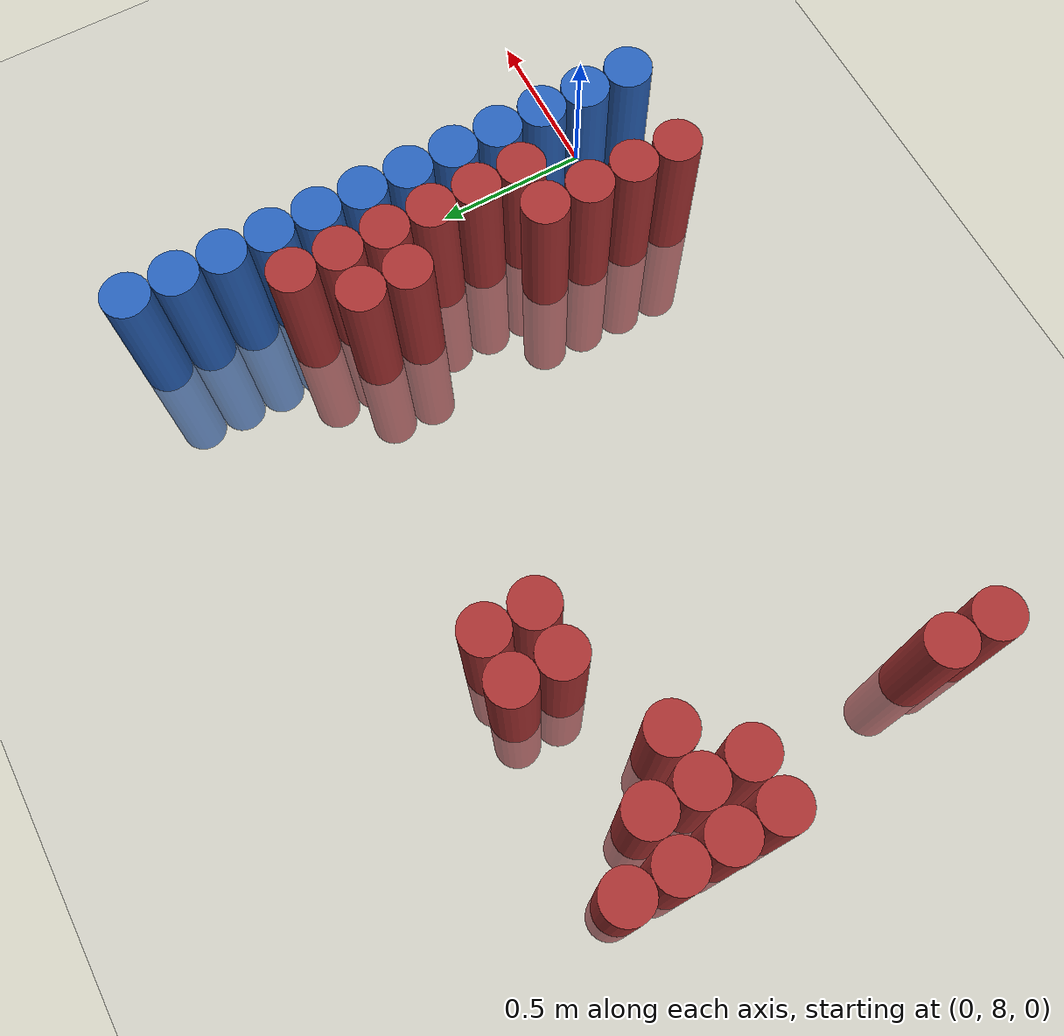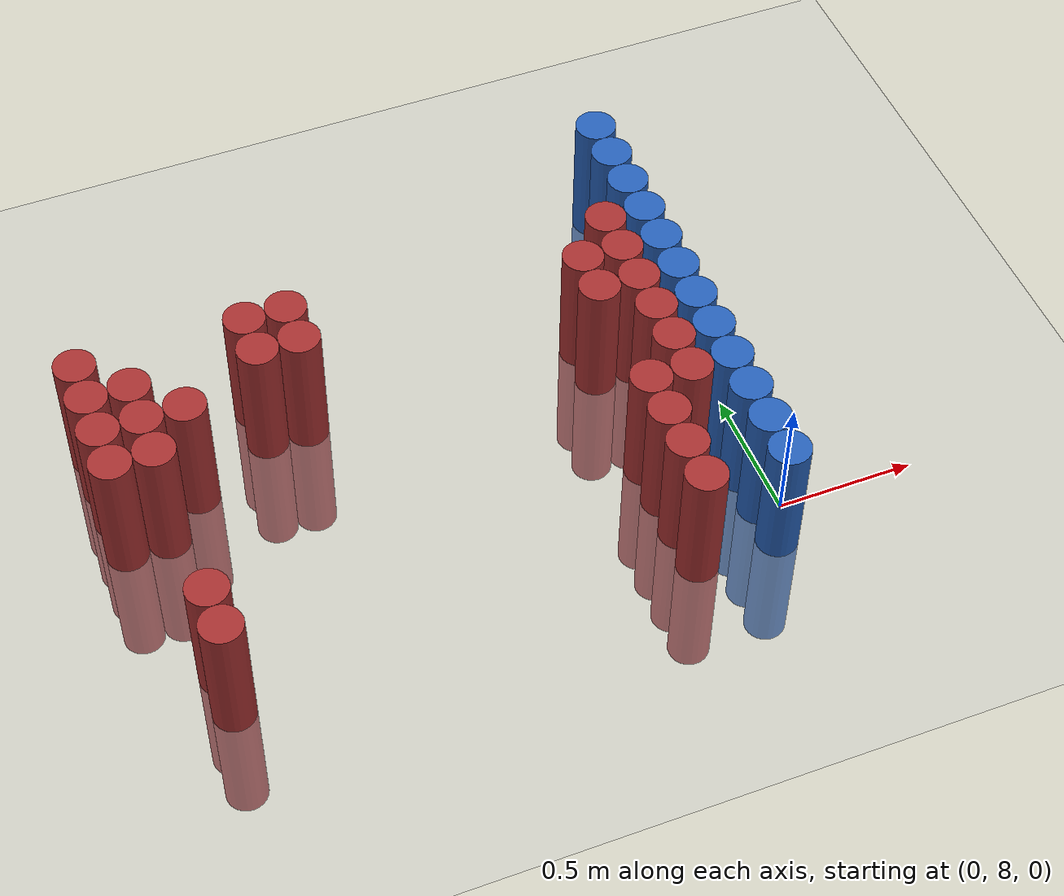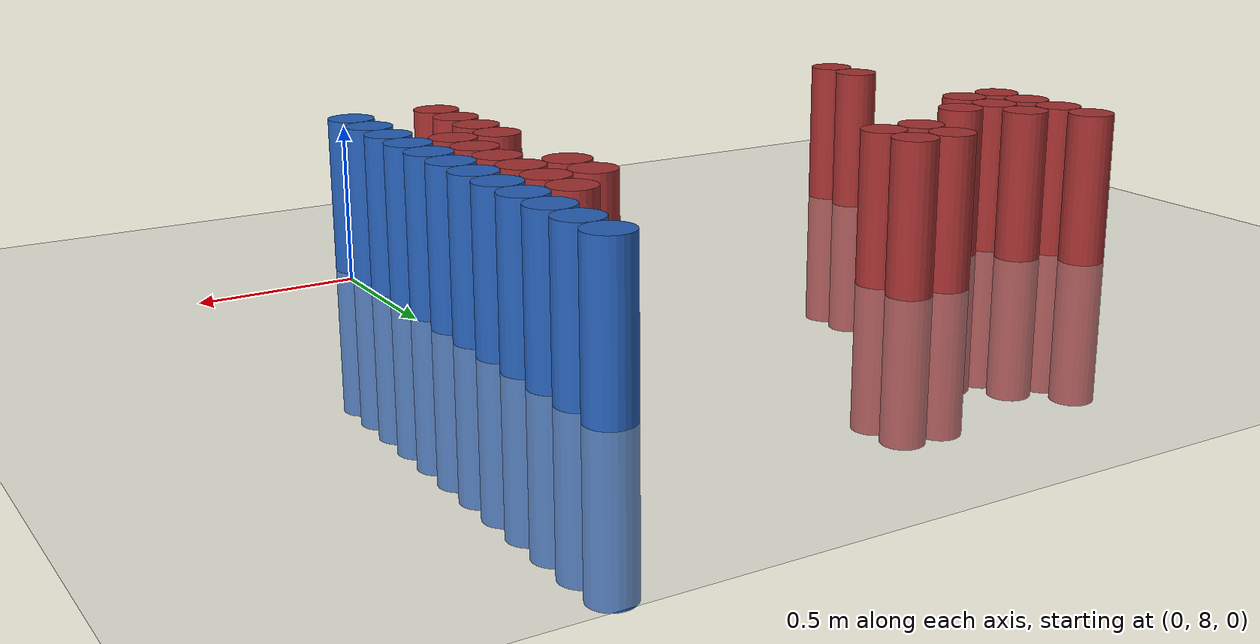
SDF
<sdf version="1.6">
 <world name="default">
  <model name="ground_plane">
   <static>1</static>
   <link name="link">
    <collision name="collision">
     <geometry><plane><normal>0 0 1</normal><size>100 100</size></plane></geometry>
     <surface><friction><ode><mu>100</mu><mu2>50</mu2></ode></friction></surface>
    </collision>
    <visual name="visual">
     <cast_shadows>0</cast_shadows>
     <geometry><plane><normal>0 0 1</normal><size>100 100</size></plane></geometry>
     <material>
      <script><uri>file://media/materials/scripts/gazebo.material</uri><name>Gazebo/Grey</name></script>
     </material>
    </visual>
   </link>
  </model>
  <model name="unit_cylinder_239">
   <static>1</static>
   <pose>-2.175000 8.625000 0.000000 0.000000 0.000000 0.000000</pose>
   <link name="link">
    <inertial>
     <mass>1</mass>
     <inertia><ixx>0.145833</ixx><ixy>0</ixy><ixz>0</ixz><iyy>0.145833</iyy><iyz>0</iyz><izz>0.125</izz></inertia>
    </inertial>
    <collision name="collision">
     <geometry><cylinder><radius>0.075000</radius><length>1</length></cylinder></geometry>
    </collision>
    <visual name="visual">
     <geometry><cylinder><radius>0.075000</radius><length>1</length></cylinder></geometry>
     <material>
      <ambient>0.648000 0.192000 0.192000 1</ambient>
      <diffuse>0.648000 0.192000 0.192000 1</diffuse>
     </material>
     <material>
      <script><name>Gazebo/Grey</name><uri>file://media/materials/scripts/gazebo.material</uri></script>
     </material>
    </visual>
    <sensor name="sensor_contact" type="contact"><contact><collision>collision</collision></contact></sensor>
   </link>
   <plugin filename="gz-sim-touchplugin-system" name="gz::sim::systems::TouchPlugin">
    <target>robot</target>
    <namespace>robot</namespace>
    <time>0.001</time>
    <enabled>true</enabled>
   </plugin>
  </model>
  <model name="unit_cylinder_240">
   <static>1</static>
   <pose>-2.175000 8.775000 0.000000 0.000000 0.000000 0.000000</pose>
   <link name="link">
    <inertial>
     <mass>1</mass>
     <inertia><ixx>0.145833</ixx><ixy>0</ixy><ixz>0</ixz><iyy>0.145833</iyy><iyz>0</iyz><izz>0.125</izz></inertia>
    </inertial>
    <collision name="collision">
     <geometry><cylinder><radius>0.075000</radius><length>1</length></cylinder></geometry>
    </collision>
    <visual name="visual">
     <geometry><cylinder><radius>0.075000</radius><length>1</length></cylinder></geometry>
     <material>
      <ambient>0.648000 0.192000 0.192000 1</ambient>
      <diffuse>0.648000 0.192000 0.192000 1</diffuse>
     </material>
     <material>
      <script><name>Gazebo/Grey</name><uri>file://media/materials/scripts/gazebo.material</uri></script>
     </material>
    </visual>
    <sensor name="sensor_contact" type="contact"><contact><collision>collision</collision></contact></sensor>
   </link>
   <plugin filename="gz-sim-touchplugin-system" name="gz::sim::systems::TouchPlugin">
    <target>robot</target>
    <namespace>robot</namespace>
    <time>0.001</time>
    <enabled>true</enabled>
   </plugin>
  </model>
  <model name="unit_cylinder_241">
   <static>1</static>
   <pose>-2.175000 8.925000 0.000000 0.000000 0.000000 0.000000</pose>
   <link name="link">
    <inertial>
     <mass>1</mass>
     <inertia><ixx>0.145833</ixx><ixy>0</ixy><ixz>0</ixz><iyy>0.145833</iyy><iyz>0</iyz><izz>0.125</izz></inertia>
    </inertial>
    <collision name="collision">
     <geometry><cylinder><radius>0.075000</radius><length>1</length></cylinder></geometry>
    </collision>
    <visual name="visual">
     <geometry><cylinder><radius>0.075000</radius><length>1</length></cylinder></geometry>
     <material>
      <ambient>0.648000 0.192000 0.192000 1</ambient>
      <diffuse>0.648000 0.192000 0.192000 1</diffuse>
     </material>
     <material>
      <script><name>Gazebo/Grey</name><uri>file://media/materials/scripts/gazebo.material</uri></script>
     </material>
    </visual>
    <sensor name="sensor_contact" type="contact"><contact><collision>collision</collision></contact></sensor>
   </link>
   <plugin filename="gz-sim-touchplugin-system" name="gz::sim::systems::TouchPlugin">
    <target>robot</target>
    <namespace>robot</namespace>
    <time>0.001</time>
    <enabled>true</enabled>
   </plugin>
  </model>
  <model name="unit_cylinder_242">
   <static>1</static>
   <pose>-2.175000 9.075000 0.000000 0.000000 0.000000 0.000000</pose>
   <link name="link">
    <inertial>
     <mass>1</mass>
     <inertia><ixx>0.145833</ixx><ixy>0</ixy><ixz>0</ixz><iyy>0.145833</iyy><iyz>0</iyz><izz>0.125</izz></inertia>
    </inertial>
    <collision name="collision">
     <geometry><cylinder><radius>0.075000</radius><length>1</length></cylinder></geometry>
    </collision>
    <visual name="visual">
     <geometry><cylinder><radius>0.075000</radius><length>1</length></cylinder></geometry>
     <material>
      <ambient>0.648000 0.192000 0.192000 1</ambient>
      <diffuse>0.648000 0.192000 0.192000 1</diffuse>
     </material>
     <material>
      <script><name>Gazebo/Grey</name><uri>file://media/materials/scripts/gazebo.material</uri></script>
     </material>
    </visual>
    <sensor name="sensor_contact" type="contact"><contact><collision>collision</collision></contact></sensor>
   </link>
   <plugin filename="gz-sim-touchplugin-system" name="gz::sim::systems::TouchPlugin">
    <target>robot</target>
    <namespace>robot</namespace>
    <time>0.001</time>
    <enabled>true</enabled>
   </plugin>
  </model>
  <model name="unit_cylinder_243">
   <static>1</static>
   <pose>-2.025000 7.875000 0.000000 0.000000 0.000000 0.000000</pose>
   <link name="link">
    <inertial>
     <mass>1</mass>
     <inertia><ixx>0.145833</ixx><ixy>0</ixy><ixz>0</ixz><iyy>0.145833</iyy><iyz>0</iyz><izz>0.125</izz></inertia>
    </inertial>
    <collision name="collision">
     <geometry><cylinder><radius>0.075000</radius><length>1</length></cylinder></geometry>
    </collision>
    <visual name="visual">
     <geometry><cylinder><radius>0.075000</radius><length>1</length></cylinder></geometry>
     <material>
      <ambient>0.648000 0.192000 0.192000 1</ambient>
      <diffuse>0.648000 0.192000 0.192000 1</diffuse>
     </material>
     <material>
      <script><name>Gazebo/Grey</name><uri>file://media/materials/scripts/gazebo.material</uri></script>
     </material>
    </visual>
    <sensor name="sensor_contact" type="contact"><contact><collision>collision</collision></contact></sensor>
   </link>
   <plugin filename="gz-sim-touchplugin-system" name="gz::sim::systems::TouchPlugin">
    <target>robot</target>
    <namespace>robot</namespace>
    <time>0.001</time>
    <enabled>true</enabled>
   </plugin>
  </model>
  <model name="unit_cylinder_244">
   <static>1</static>
   <pose>-2.025000 8.025000 0.000000 0.000000 0.000000 0.000000</pose>
   <link name="link">
    <inertial>
     <mass>1</mass>
     <inertia><ixx>0.145833</ixx><ixy>0</ixy><ixz>0</ixz><iyy>0.145833</iyy><iyz>0</iyz><izz>0.125</izz></inertia>
    </inertial>
    <collision name="collision">
     <geometry><cylinder><radius>0.075000</radius><length>1</length></cylinder></geometry>
    </collision>
    <visual name="visual">
     <geometry><cylinder><radius>0.075000</radius><length>1</length></cylinder></geometry>
     <material>
      <ambient>0.648000 0.192000 0.192000 1</ambient>
      <diffuse>0.648000 0.192000 0.192000 1</diffuse>
     </material>
     <material>
      <script><name>Gazebo/Grey</name><uri>file://media/materials/scripts/gazebo.material</uri></script>
     </material>
    </visual>
    <sensor name="sensor_contact" type="contact"><contact><collision>collision</collision></contact></sensor>
   </link>
   <plugin filename="gz-sim-touchplugin-system" name="gz::sim::systems::TouchPlugin">
    <target>robot</target>
    <namespace>robot</namespace>
    <time>0.001</time>
    <enabled>true</enabled>
   </plugin>
  </model>
  <model name="unit_cylinder_245">
   <static>1</static>
   <pose>-2.025000 8.625000 0.000000 0.000000 0.000000 0.000000</pose>
   <link name="link">
    <inertial>
     <mass>1</mass>
     <inertia><ixx>0.145833</ixx><ixy>0</ixy><ixz>0</ixz><iyy>0.145833</iyy><iyz>0</iyz><izz>0.125</izz></inertia>
    </inertial>
    <collision name="collision">
     <geometry><cylinder><radius>0.075000</radius><length>1</length></cylinder></geometry>
    </collision>
    <visual name="visual">
     <geometry><cylinder><radius>0.075000</radius><length>1</length></cylinder></geometry>
     <material>
      <ambient>0.648000 0.192000 0.192000 1</ambient>
      <diffuse>0.648000 0.192000 0.192000 1</diffuse>
     </material>
     <material>
      <script><name>Gazebo/Grey</name><uri>file://media/materials/scripts/gazebo.material</uri></script>
     </material>
    </visual>
    <sensor name="sensor_contact" type="contact"><contact><collision>collision</collision></contact></sensor>
   </link>
   <plugin filename="gz-sim-touchplugin-system" name="gz::sim::systems::TouchPlugin">
    <target>robot</target>
    <namespace>robot</namespace>
    <time>0.001</time>
    <enabled>true</enabled>
   </plugin>
  </model>
  <model name="unit_cylinder_246">
   <static>1</static>
   <pose>-2.025000 8.775000 0.000000 0.000000 0.000000 0.000000</pose>
   <link name="link">
    <inertial>
     <mass>1</mass>
     <inertia><ixx>0.145833</ixx><ixy>0</ixy><ixz>0</ixz><iyy>0.145833</iyy><iyz>0</iyz><izz>0.125</izz></inertia>
    </inertial>
    <collision name="collision">
     <geometry><cylinder><radius>0.075000</radius><length>1</length></cylinder></geometry>
    </collision>
    <visual name="visual">
     <geometry><cylinder><radius>0.075000</radius><length>1</length></cylinder></geometry>
     <material>
      <ambient>0.648000 0.192000 0.192000 1</ambient>
      <diffuse>0.648000 0.192000 0.192000 1</diffuse>
     </material>
     <material>
      <script><name>Gazebo/Grey</name><uri>file://media/materials/scripts/gazebo.material</uri></script>
     </material>
    </visual>
    <sensor name="sensor_contact" type="contact"><contact><collision>collision</collision></contact></sensor>
   </link>
   <plugin filename="gz-sim-touchplugin-system" name="gz::sim::systems::TouchPlugin">
    <target>robot</target>
    <namespace>robot</namespace>
    <time>0.001</time>
    <enabled>true</enabled>
   </plugin>
  </model>
  <model name="unit_cylinder_247">
   <static>1</static>
   <pose>-2.025000 8.925000 0.000000 0.000000 0.000000 0.000000</pose>
   <link name="link">
    <inertial>
     <mass>1</mass>
     <inertia><ixx>0.145833</ixx><ixy>0</ixy><ixz>0</ixz><iyy>0.145833</iyy><iyz>0</iyz><izz>0.125</izz></inertia>
    </inertial>
    <collision name="collision">
     <geometry><cylinder><radius>0.075000</radius><length>1</length></cylinder></geometry>
    </collision>
    <visual name="visual">
     <geometry><cylinder><radius>0.075000</radius><length>1</length></cylinder></geometry>
     <material>
      <ambient>0.648000 0.192000 0.192000 1</ambient>
      <diffuse>0.648000 0.192000 0.192000 1</diffuse>
     </material>
     <material>
      <script><name>Gazebo/Grey</name><uri>file://media/materials/scripts/gazebo.material</uri></script>
     </material>
    </visual>
    <sensor name="sensor_contact" type="contact"><contact><collision>collision</collision></contact></sensor>
   </link>
   <plugin filename="gz-sim-touchplugin-system" name="gz::sim::systems::TouchPlugin">
    <target>robot</target>
    <namespace>robot</namespace>
    <time>0.001</time>
    <enabled>true</enabled>
   </plugin>
  </model>
  <model name="unit_cylinder_248">
   <static>1</static>
   <pose>-1.875000 8.775000 0.000000 0.000000 0.000000 0.000000</pose>
   <link name="link">
    <inertial>
     <mass>1</mass>
     <inertia><ixx>0.145833</ixx><ixy>0</ixy><ixz>0</ixz><iyy>0.145833</iyy><iyz>0</iyz><izz>0.125</izz></inertia>
    </inertial>
    <collision name="collision">
     <geometry><cylinder><radius>0.075000</radius><length>1</length></cylinder></geometry>
    </collision>
    <visual name="visual">
     <geometry><cylinder><radius>0.075000</radius><length>1</length></cylinder></geometry>
     <material>
      <ambient>0.648000 0.192000 0.192000 1</ambient>
      <diffuse>0.648000 0.192000 0.192000 1</diffuse>
     </material>
     <material>
      <script><name>Gazebo/Grey</name><uri>file://media/materials/scripts/gazebo.material</uri></script>
     </material>
    </visual>
    <sensor name="sensor_contact" type="contact"><contact><collision>collision</collision></contact></sensor>
   </link>
   <plugin filename="gz-sim-touchplugin-system" name="gz::sim::systems::TouchPlugin">
    <target>robot</target>
    <namespace>robot</namespace>
    <time>0.001</time>
    <enabled>true</enabled>
   </plugin>
  </model>
  <model name="unit_cylinder_255">
   <static>1</static>
   <pose>-1.575000 8.925000 0.000000 0.000000 0.000000 0.000000</pose>
   <link name="link">
    <inertial>
     <mass>1</mass>
     <inertia><ixx>0.145833</ixx><ixy>0</ixy><ixz>0</ixz><iyy>0.145833</iyy><iyz>0</iyz><izz>0.125</izz></inertia>
    </inertial>
    <collision name="collision">
     <geometry><cylinder><radius>0.075000</radius><length>1</length></cylinder></geometry>
    </collision>
    <visual name="visual">
     <geometry><cylinder><radius>0.075000</radius><length>1</length></cylinder></geometry>
     <material>
      <ambient>0.648000 0.192000 0.192000 1</ambient>
      <diffuse>0.648000 0.192000 0.192000 1</diffuse>
     </material>
     <material>
      <script><name>Gazebo/Grey</name><uri>file://media/materials/scripts/gazebo.material</uri></script>
     </material>
    </visual>
    <sensor name="sensor_contact" type="contact"><contact><collision>collision</collision></contact></sensor>
   </link>
   <plugin filename="gz-sim-touchplugin-system" name="gz::sim::systems::TouchPlugin">
    <target>robot</target>
    <namespace>robot</namespace>
    <time>0.001</time>
    <enabled>true</enabled>
   </plugin>
  </model>
  <model name="unit_cylinder_256">
   <static>1</static>
   <pose>-1.575000 9.075000 0.000000 0.000000 0.000000 0.000000</pose>
   <link name="link">
    <inertial>
     <mass>1</mass>
     <inertia><ixx>0.145833</ixx><ixy>0</ixy><ixz>0</ixz><iyy>0.145833</iyy><iyz>0</iyz><izz>0.125</izz></inertia>
    </inertial>
    <collision name="collision">
     <geometry><cylinder><radius>0.075000</radius><length>1</length></cylinder></geometry>
    </collision>
    <visual name="visual">
     <geometry><cylinder><radius>0.075000</radius><length>1</length></cylinder></geometry>
     <material>
      <ambient>0.648000 0.192000 0.192000 1</ambient>
      <diffuse>0.648000 0.192000 0.192000 1</diffuse>
     </material>
     <material>
      <script><name>Gazebo/Grey</name><uri>file://media/materials/scripts/gazebo.material</uri></script>
     </material>
    </visual>
    <sensor name="sensor_contact" type="contact"><contact><collision>collision</collision></contact></sensor>
   </link>
   <plugin filename="gz-sim-touchplugin-system" name="gz::sim::systems::TouchPlugin">
    <target>robot</target>
    <namespace>robot</namespace>
    <time>0.001</time>
    <enabled>true</enabled>
   </plugin>
  </model>
  <model name="unit_cylinder_258">
   <static>1</static>
   <pose>-1.425000 8.925000 0.000000 0.000000 0.000000 0.000000</pose>
   <link name="link">
    <inertial>
     <mass>1</mass>
     <inertia><ixx>0.145833</ixx><ixy>0</ixy><ixz>0</ixz><iyy>0.145833</iyy><iyz>0</iyz><izz>0.125</izz></inertia>
    </inertial>
    <collision name="collision">
     <geometry><cylinder><radius>0.075000</radius><length>1</length></cylinder></geometry>
    </collision>
    <visual name="visual">
     <geometry><cylinder><radius>0.075000</radius><length>1</length></cylinder></geometry>
     <material>
      <ambient>0.648000 0.192000 0.192000 1</ambient>
      <diffuse>0.648000 0.192000 0.192000 1</diffuse>
     </material>
     <material>
      <script><name>Gazebo/Grey</name><uri>file://media/materials/scripts/gazebo.material</uri></script>
     </material>
    </visual>
    <sensor name="sensor_contact" type="contact"><contact><collision>collision</collision></contact></sensor>
   </link>
   <plugin filename="gz-sim-touchplugin-system" name="gz::sim::systems::TouchPlugin">
    <target>robot</target>
    <namespace>robot</namespace>
    <time>0.001</time>
    <enabled>true</enabled>
   </plugin>
  </model>
  <model name="unit_cylinder_259">
   <static>1</static>
   <pose>-1.425000 9.075000 0.000000 0.000000 0.000000 0.000000</pose>
   <link name="link">
    <inertial>
     <mass>1</mass>
     <inertia><ixx>0.145833</ixx><ixy>0</ixy><ixz>0</ixz><iyy>0.145833</iyy><iyz>0</iyz><izz>0.125</izz></inertia>
    </inertial>
    <collision name="collision">
     <geometry><cylinder><radius>0.075000</radius><length>1</length></cylinder></geometry>
    </collision>
    <visual name="visual">
     <geometry><cylinder><radius>0.075000</radius><length>1</length></cylinder></geometry>
     <material>
      <ambient>0.648000 0.192000 0.192000 1</ambient>
      <diffuse>0.648000 0.192000 0.192000 1</diffuse>
     </material>
     <material>
      <script><name>Gazebo/Grey</name><uri>file://media/materials/scripts/gazebo.material</uri></script>
     </material>
    </visual>
    <sensor name="sensor_contact" type="contact"><contact><collision>collision</collision></contact></sensor>
   </link>
   <plugin filename="gz-sim-touchplugin-system" name="gz::sim::systems::TouchPlugin">
    <target>robot</target>
    <namespace>robot</namespace>
    <time>0.001</time>
    <enabled>true</enabled>
   </plugin>
  </model>
  <model name="unit_cylinder_289">
   <static>1</static>
   <pose>-0.375000 7.875000 0.000000 0.000000 0.000000 0.000000</pose>
   <link name="link">
    <inertial>
     <mass>1</mass>
     <inertia><ixx>0.145833</ixx><ixy>0</ixy><ixz>0</ixz><iyy>0.145833</iyy><iyz>0</iyz><izz>0.125</izz></inertia>
    </inertial>
    <collision name="collision">
     <geometry><cylinder><radius>0.075000</radius><length>1</length></cylinder></geometry>
    </collision>
    <visual name="visual">
     <geometry><cylinder><radius>0.075000</radius><length>1</length></cylinder></geometry>
     <material>
      <ambient>0.648000 0.192000 0.192000 1</ambient>
      <diffuse>0.648000 0.192000 0.192000 1</diffuse>
     </material>
     <material>
      <script><name>Gazebo/Grey</name><uri>file://media/materials/scripts/gazebo.material</uri></script>
     </material>
    </visual>
    <sensor name="sensor_contact" type="contact"><contact><collision>collision</collision></contact></sensor>
   </link>
   <plugin filename="gz-sim-touchplugin-system" name="gz::sim::systems::TouchPlugin">
    <target>robot</target>
    <namespace>robot</namespace>
    <time>0.001</time>
    <enabled>true</enabled>
   </plugin>
  </model>
  <model name="unit_cylinder_290">
   <static>1</static>
   <pose>-0.375000 8.025000 0.000000 0.000000 0.000000 0.000000</pose>
   <link name="link">
    <inertial>
     <mass>1</mass>
     <inertia><ixx>0.145833</ixx><ixy>0</ixy><ixz>0</ixz><iyy>0.145833</iyy><iyz>0</iyz><izz>0.125</izz></inertia>
    </inertial>
    <collision name="collision">
     <geometry><cylinder><radius>0.075000</radius><length>1</length></cylinder></geometry>
    </collision>
    <visual name="visual">
     <geometry><cylinder><radius>0.075000</radius><length>1</length></cylinder></geometry>
     <material>
      <ambient>0.648000 0.192000 0.192000 1</ambient>
      <diffuse>0.648000 0.192000 0.192000 1</diffuse>
     </material>
     <material>
      <script><name>Gazebo/Grey</name><uri>file://media/materials/scripts/gazebo.material</uri></script>
     </material>
    </visual>
    <sensor name="sensor_contact" type="contact"><contact><collision>collision</collision></contact></sensor>
   </link>
   <plugin filename="gz-sim-touchplugin-system" name="gz::sim::systems::TouchPlugin">
    <target>robot</target>
    <namespace>robot</namespace>
    <time>0.001</time>
    <enabled>true</enabled>
   </plugin>
  </model>
  <model name="unit_cylinder_291">
   <static>1</static>
   <pose>-0.375000 8.175000 0.000000 0.000000 0.000000 0.000000</pose>
   <link name="link">
    <inertial>
     <mass>1</mass>
     <inertia><ixx>0.145833</ixx><ixy>0</ixy><ixz>0</ixz><iyy>0.145833</iyy><iyz>0</iyz><izz>0.125</izz></inertia>
    </inertial>
    <collision name="collision">
     <geometry><cylinder><radius>0.075000</radius><length>1</length></cylinder></geometry>
    </collision>
    <visual name="visual">
     <geometry><cylinder><radius>0.075000</radius><length>1</length></cylinder></geometry>
     <material>
      <ambient>0.648000 0.192000 0.192000 1</ambient>
      <diffuse>0.648000 0.192000 0.192000 1</diffuse>
     </material>
     <material>
      <script><name>Gazebo/Grey</name><uri>file://media/materials/scripts/gazebo.material</uri></script>
     </material>
    </visual>
    <sensor name="sensor_contact" type="contact"><contact><collision>collision</collision></contact></sensor>
   </link>
   <plugin filename="gz-sim-touchplugin-system" name="gz::sim::systems::TouchPlugin">
    <target>robot</target>
    <namespace>robot</namespace>
    <time>0.001</time>
    <enabled>true</enabled>
   </plugin>
  </model>
  <model name="unit_cylinder_292">
   <static>1</static>
   <pose>-0.375000 8.325000 0.000000 0.000000 0.000000 0.000000</pose>
   <link name="link">
    <inertial>
     <mass>1</mass>
     <inertia><ixx>0.145833</ixx><ixy>0</ixy><ixz>0</ixz><iyy>0.145833</iyy><iyz>0</iyz><izz>0.125</izz></inertia>
    </inertial>
    <collision name="collision">
     <geometry><cylinder><radius>0.075000</radius><length>1</length></cylinder></geometry>
    </collision>
    <visual name="visual">
     <geometry><cylinder><radius>0.075000</radius><length>1</length></cylinder></geometry>
     <material>
      <ambient>0.648000 0.192000 0.192000 1</ambient>
      <diffuse>0.648000 0.192000 0.192000 1</diffuse>
     </material>
     <material>
      <script><name>Gazebo/Grey</name><uri>file://media/materials/scripts/gazebo.material</uri></script>
     </material>
    </visual>
    <sensor name="sensor_contact" type="contact"><contact><collision>collision</collision></contact></sensor>
   </link>
   <plugin filename="gz-sim-touchplugin-system" name="gz::sim::systems::TouchPlugin">
    <target>robot</target>
    <namespace>robot</namespace>
    <time>0.001</time>
    <enabled>true</enabled>
   </plugin>
  </model>
  <model name="unit_cylinder_293">
   <static>1</static>
   <pose>-0.375000 8.775000 0.000000 0.000000 0.000000 0.000000</pose>
   <link name="link">
    <inertial>
     <mass>1</mass>
     <inertia><ixx>0.145833</ixx><ixy>0</ixy><ixz>0</ixz><iyy>0.145833</iyy><iyz>0</iyz><izz>0.125</izz></inertia>
    </inertial>
    <collision name="collision">
     <geometry><cylinder><radius>0.075000</radius><length>1</length></cylinder></geometry>
    </collision>
    <visual name="visual">
     <geometry><cylinder><radius>0.075000</radius><length>1</length></cylinder></geometry>
     <material>
      <ambient>0.648000 0.192000 0.192000 1</ambient>
      <diffuse>0.648000 0.192000 0.192000 1</diffuse>
     </material>
     <material>
      <script><name>Gazebo/Grey</name><uri>file://media/materials/scripts/gazebo.material</uri></script>
     </material>
    </visual>
    <sensor name="sensor_contact" type="contact"><contact><collision>collision</collision></contact></sensor>
   </link>
   <plugin filename="gz-sim-touchplugin-system" name="gz::sim::systems::TouchPlugin">
    <target>robot</target>
    <namespace>robot</namespace>
    <time>0.001</time>
    <enabled>true</enabled>
   </plugin>
  </model>
  <model name="unit_cylinder_294">
   <static>1</static>
   <pose>-0.375000 8.925000 0.000000 0.000000 0.000000 0.000000</pose>
   <link name="link">
    <inertial>
     <mass>1</mass>
     <inertia><ixx>0.145833</ixx><ixy>0</ixy><ixz>0</ixz><iyy>0.145833</iyy><iyz>0</iyz><izz>0.125</izz></inertia>
    </inertial>
    <collision name="collision">
     <geometry><cylinder><radius>0.075000</radius><length>1</length></cylinder></geometry>
    </collision>
    <visual name="visual">
     <geometry><cylinder><radius>0.075000</radius><length>1</length></cylinder></geometry>
     <material>
      <ambient>0.648000 0.192000 0.192000 1</ambient>
      <diffuse>0.648000 0.192000 0.192000 1</diffuse>
     </material>
     <material>
      <script><name>Gazebo/Grey</name><uri>file://media/materials/scripts/gazebo.material</uri></script>
     </material>
    </visual>
    <sensor name="sensor_contact" type="contact"><contact><collision>collision</collision></contact></sensor>
   </link>
   <plugin filename="gz-sim-touchplugin-system" name="gz::sim::systems::TouchPlugin">
    <target>robot</target>
    <namespace>robot</namespace>
    <time>0.001</time>
    <enabled>true</enabled>
   </plugin>
  </model>
  <model name="unit_cylinder_303">
   <static>1</static>
   <pose>-0.225000 8.325000 0.000000 0.000000 0.000000 0.000000</pose>
   <link name="link">
    <inertial>
     <mass>1</mass>
     <inertia><ixx>0.145833</ixx><ixy>0</ixy><ixz>0</ixz><iyy>0.145833</iyy><iyz>0</iyz><izz>0.125</izz></inertia>
    </inertial>
    <collision name="collision">
     <geometry><cylinder><radius>0.075000</radius><length>1</length></cylinder></geometry>
    </collision>
    <visual name="visual">
     <geometry><cylinder><radius>0.075000</radius><length>1</length></cylinder></geometry>
     <material>
      <ambient>0.648000 0.192000 0.192000 1</ambient>
      <diffuse>0.648000 0.192000 0.192000 1</diffuse>
     </material>
     <material>
      <script><name>Gazebo/Grey</name><uri>file://media/materials/scripts/gazebo.material</uri></script>
     </material>
    </visual>
    <sensor name="sensor_contact" type="contact"><contact><collision>collision</collision></contact></sensor>
   </link>
   <plugin filename="gz-sim-touchplugin-system" name="gz::sim::systems::TouchPlugin">
    <target>robot</target>
    <namespace>robot</namespace>
    <time>0.001</time>
    <enabled>true</enabled>
   </plugin>
  </model>
  <model name="unit_cylinder_304">
   <static>1</static>
   <pose>-0.225000 8.475000 0.000000 0.000000 0.000000 0.000000</pose>
   <link name="link">
    <inertial>
     <mass>1</mass>
     <inertia><ixx>0.145833</ixx><ixy>0</ixy><ixz>0</ixz><iyy>0.145833</iyy><iyz>0</iyz><izz>0.125</izz></inertia>
    </inertial>
    <collision name="collision">
     <geometry><cylinder><radius>0.075000</radius><length>1</length></cylinder></geometry>
    </collision>
    <visual name="visual">
     <geometry><cylinder><radius>0.075000</radius><length>1</length></cylinder></geometry>
     <material>
      <ambient>0.648000 0.192000 0.192000 1</ambient>
      <diffuse>0.648000 0.192000 0.192000 1</diffuse>
     </material>
     <material>
      <script><name>Gazebo/Grey</name><uri>file://media/materials/scripts/gazebo.material</uri></script>
     </material>
    </visual>
    <sensor name="sensor_contact" type="contact"><contact><collision>collision</collision></contact></sensor>
   </link>
   <plugin filename="gz-sim-touchplugin-system" name="gz::sim::systems::TouchPlugin">
    <target>robot</target>
    <namespace>robot</namespace>
    <time>0.001</time>
    <enabled>true</enabled>
   </plugin>
  </model>
  <model name="unit_cylinder_305">
   <static>1</static>
   <pose>-0.225000 8.625000 0.000000 0.000000 0.000000 0.000000</pose>
   <link name="link">
    <inertial>
     <mass>1</mass>
     <inertia><ixx>0.145833</ixx><ixy>0</ixy><ixz>0</ixz><iyy>0.145833</iyy><iyz>0</iyz><izz>0.125</izz></inertia>
    </inertial>
    <collision name="collision">
     <geometry><cylinder><radius>0.075000</radius><length>1</length></cylinder></geometry>
    </collision>
    <visual name="visual">
     <geometry><cylinder><radius>0.075000</radius><length>1</length></cylinder></geometry>
     <material>
      <ambient>0.648000 0.192000 0.192000 1</ambient>
      <diffuse>0.648000 0.192000 0.192000 1</diffuse>
     </material>
     <material>
      <script><name>Gazebo/Grey</name><uri>file://media/materials/scripts/gazebo.material</uri></script>
     </material>
    </visual>
    <sensor name="sensor_contact" type="contact"><contact><collision>collision</collision></contact></sensor>
   </link>
   <plugin filename="gz-sim-touchplugin-system" name="gz::sim::systems::TouchPlugin">
    <target>robot</target>
    <namespace>robot</namespace>
    <time>0.001</time>
    <enabled>true</enabled>
   </plugin>
  </model>
  <model name="unit_cylinder_306">
   <static>1</static>
   <pose>-0.225000 8.775000 0.000000 0.000000 0.000000 0.000000</pose>
   <link name="link">
    <inertial>
     <mass>1</mass>
     <inertia><ixx>0.145833</ixx><ixy>0</ixy><ixz>0</ixz><iyy>0.145833</iyy><iyz>0</iyz><izz>0.125</izz></inertia>
    </inertial>
    <collision name="collision">
     <geometry><cylinder><radius>0.075000</radius><length>1</length></cylinder></geometry>
    </collision>
    <visual name="visual">
     <geometry><cylinder><radius>0.075000</radius><length>1</length></cylinder></geometry>
     <material>
      <ambient>0.648000 0.192000 0.192000 1</ambient>
      <diffuse>0.648000 0.192000 0.192000 1</diffuse>
     </material>
     <material>
      <script><name>Gazebo/Grey</name><uri>file://media/materials/scripts/gazebo.material</uri></script>
     </material>
    </visual>
    <sensor name="sensor_contact" type="contact"><contact><collision>collision</collision></contact></sensor>
   </link>
   <plugin filename="gz-sim-touchplugin-system" name="gz::sim::systems::TouchPlugin">
    <target>robot</target>
    <namespace>robot</namespace>
    <time>0.001</time>
    <enabled>true</enabled>
   </plugin>
  </model>
  <model name="unit_cylinder_307">
   <static>1</static>
   <pose>-0.225000 8.925000 0.000000 0.000000 0.000000 0.000000</pose>
   <link name="link">
    <inertial>
     <mass>1</mass>
     <inertia><ixx>0.145833</ixx><ixy>0</ixy><ixz>0</ixz><iyy>0.145833</iyy><iyz>0</iyz><izz>0.125</izz></inertia>
    </inertial>
    <collision name="collision">
     <geometry><cylinder><radius>0.075000</radius><length>1</length></cylinder></geometry>
    </collision>
    <visual name="visual">
     <geometry><cylinder><radius>0.075000</radius><length>1</length></cylinder></geometry>
     <material>
      <ambient>0.648000 0.192000 0.192000 1</ambient>
      <diffuse>0.648000 0.192000 0.192000 1</diffuse>
     </material>
     <material>
      <script><name>Gazebo/Grey</name><uri>file://media/materials/scripts/gazebo.material</uri></script>
     </material>
    </visual>
    <sensor name="sensor_contact" type="contact"><contact><collision>collision</collision></contact></sensor>
   </link>
   <plugin filename="gz-sim-touchplugin-system" name="gz::sim::systems::TouchPlugin">
    <target>robot</target>
    <namespace>robot</namespace>
    <time>0.001</time>
    <enabled>true</enabled>
   </plugin>
  </model>
  <model name="unit_cylinder_308">
   <static>1</static>
   <pose>-0.225000 9.075000 0.000000 0.000000 0.000000 0.000000</pose>
   <link name="link">
    <inertial>
     <mass>1</mass>
     <inertia><ixx>0.145833</ixx><ixy>0</ixy><ixz>0</ixz><iyy>0.145833</iyy><iyz>0</iyz><izz>0.125</izz></inertia>
    </inertial>
    <collision name="collision">
     <geometry><cylinder><radius>0.075000</radius><length>1</length></cylinder></geometry>
    </collision>
    <visual name="visual">
     <geometry><cylinder><radius>0.075000</radius><length>1</length></cylinder></geometry>
     <material>
      <ambient>0.648000 0.192000 0.192000 1</ambient>
      <diffuse>0.648000 0.192000 0.192000 1</diffuse>
     </material>
     <material>
      <script><name>Gazebo/Grey</name><uri>file://media/materials/scripts/gazebo.material</uri></script>
     </material>
    </visual>
    <sensor name="sensor_contact" type="contact"><contact><collision>collision</collision></contact></sensor>
   </link>
   <plugin filename="gz-sim-touchplugin-system" name="gz::sim::systems::TouchPlugin">
    <target>robot</target>
    <namespace>robot</namespace>
    <time>0.001</time>
    <enabled>true</enabled>
   </plugin>
  </model>
  <model name="unit_cylinder_327">
   <static>1</static>
   <pose>-0.075000 7.875000 0.000000 0.000000 0.000000 0.000000</pose>
   <link name="link">
    <inertial>
     <mass>1</mass>
     <inertia><ixx>0.145833</ixx><ixy>0</ixy><ixz>0</ixz><iyy>0.145833</iyy><iyz>0</iyz><izz>0.125</izz></inertia>
    </inertial>
    <collision name="collision">
     <geometry><cylinder><radius>0.075000</radius><length>1</length></cylinder></geometry>
    </collision>
    <visual name="visual">
     <geometry><cylinder><radius>0.075000</radius><length>1</length></cylinder></geometry>
     <material>
      <ambient>0.152000 0.379000 0.720000 1</ambient>
      <diffuse>0.152000 0.379000 0.720000 1</diffuse>
     </material>
     <material>
      <script><name>Gazebo/Grey</name><uri>file://media/materials/scripts/gazebo.material</uri></script>
     </material>
    </visual>
    <sensor name="sensor_contact" type="contact"><contact><collision>collision</collision></contact></sensor>
   </link>
   <plugin filename="gz-sim-touchplugin-system" name="gz::sim::systems::TouchPlugin">
    <target>robot</target>
    <namespace>robot</namespace>
    <time>0.001</time>
    <enabled>true</enabled>
   </plugin>
  </model>
  <model name="unit_cylinder_328">
   <static>1</static>
   <pose>-0.075000 8.025000 0.000000 0.000000 0.000000 0.000000</pose>
   <link name="link">
    <inertial>
     <mass>1</mass>
     <inertia><ixx>0.145833</ixx><ixy>0</ixy><ixz>0</ixz><iyy>0.145833</iyy><iyz>0</iyz><izz>0.125</izz></inertia>
    </inertial>
    <collision name="collision">
     <geometry><cylinder><radius>0.075000</radius><length>1</length></cylinder></geometry>
    </collision>
    <visual name="visual">
     <geometry><cylinder><radius>0.075000</radius><length>1</length></cylinder></geometry>
     <material>
      <ambient>0.152000 0.379000 0.720000 1</ambient>
      <diffuse>0.152000 0.379000 0.720000 1</diffuse>
     </material>
     <material>
      <script><name>Gazebo/Grey</name><uri>file://media/materials/scripts/gazebo.material</uri></script>
     </material>
    </visual>
    <sensor name="sensor_contact" type="contact"><contact><collision>collision</collision></contact></sensor>
   </link>
   <plugin filename="gz-sim-touchplugin-system" name="gz::sim::systems::TouchPlugin">
    <target>robot</target>
    <namespace>robot</namespace>
    <time>0.001</time>
    <enabled>true</enabled>
   </plugin>
  </model>
  <model name="unit_cylinder_329">
   <static>1</static>
   <pose>-0.075000 8.175000 0.000000 0.000000 0.000000 0.000000</pose>
   <link name="link">
    <inertial>
     <mass>1</mass>
     <inertia><ixx>0.145833</ixx><ixy>0</ixy><ixz>0</ixz><iyy>0.145833</iyy><iyz>0</iyz><izz>0.125</izz></inertia>
    </inertial>
    <collision name="collision">
     <geometry><cylinder><radius>0.075000</radius><length>1</length></cylinder></geometry>
    </collision>
    <visual name="visual">
     <geometry><cylinder><radius>0.075000</radius><length>1</length></cylinder></geometry>
     <material>
      <ambient>0.152000 0.379000 0.720000 1</ambient>
      <diffuse>0.152000 0.379000 0.720000 1</diffuse>
     </material>
     <material>
      <script><name>Gazebo/Grey</name><uri>file://media/materials/scripts/gazebo.material</uri></script>
     </material>
    </visual>
    <sensor name="sensor_contact" type="contact"><contact><collision>collision</collision></contact></sensor>
   </link>
   <plugin filename="gz-sim-touchplugin-system" name="gz::sim::systems::TouchPlugin">
    <target>robot</target>
    <namespace>robot</namespace>
    <time>0.001</time>
    <enabled>true</enabled>
   </plugin>
  </model>
  <model name="unit_cylinder_330">
   <static>1</static>
   <pose>-0.075000 8.325000 0.000000 0.000000 0.000000 0.000000</pose>
   <link name="link">
    <inertial>
     <mass>1</mass>
     <inertia><ixx>0.145833</ixx><ixy>0</ixy><ixz>0</ixz><iyy>0.145833</iyy><iyz>0</iyz><izz>0.125</izz></inertia>
    </inertial>
    <collision name="collision">
     <geometry><cylinder><radius>0.075000</radius><length>1</length></cylinder></geometry>
    </collision>
    <visual name="visual">
     <geometry><cylinder><radius>0.075000</radius><length>1</length></cylinder></geometry>
     <material>
      <ambient>0.152000 0.379000 0.720000 1</ambient>
      <diffuse>0.152000 0.379000 0.720000 1</diffuse>
     </material>
     <material>
      <script><name>Gazebo/Grey</name><uri>file://media/materials/scripts/gazebo.material</uri></script>
     </material>
    </visual>
    <sensor name="sensor_contact" type="contact"><contact><collision>collision</collision></contact></sensor>
   </link>
   <plugin filename="gz-sim-touchplugin-system" name="gz::sim::systems::TouchPlugin">
    <target>robot</target>
    <namespace>robot</namespace>
    <time>0.001</time>
    <enabled>true</enabled>
   </plugin>
  </model>
  <model name="unit_cylinder_331">
   <static>1</static>
   <pose>-0.075000 8.475000 0.000000 0.000000 0.000000 0.000000</pose>
   <link name="link">
    <inertial>
     <mass>1</mass>
     <inertia><ixx>0.145833</ixx><ixy>0</ixy><ixz>0</ixz><iyy>0.145833</iyy><iyz>0</iyz><izz>0.125</izz></inertia>
    </inertial>
    <collision name="collision">
     <geometry><cylinder><radius>0.075000</radius><length>1</length></cylinder></geometry>
    </collision>
    <visual name="visual">
     <geometry><cylinder><radius>0.075000</radius><length>1</length></cylinder></geometry>
     <material>
      <ambient>0.152000 0.379000 0.720000 1</ambient>
      <diffuse>0.152000 0.379000 0.720000 1</diffuse>
     </material>
     <material>
      <script><name>Gazebo/Grey</name><uri>file://media/materials/scripts/gazebo.material</uri></script>
     </material>
    </visual>
    <sensor name="sensor_contact" type="contact"><contact><collision>collision</collision></contact></sensor>
   </link>
   <plugin filename="gz-sim-touchplugin-system" name="gz::sim::systems::TouchPlugin">
    <target>robot</target>
    <namespace>robot</namespace>
    <time>0.001</time>
    <enabled>true</enabled>
   </plugin>
  </model>
  <model name="unit_cylinder_332">
   <static>1</static>
   <pose>-0.075000 8.625000 0.000000 0.000000 0.000000 0.000000</pose>
   <link name="link">
    <inertial>
     <mass>1</mass>
     <inertia><ixx>0.145833</ixx><ixy>0</ixy><ixz>0</ixz><iyy>0.145833</iyy><iyz>0</iyz><izz>0.125</izz></inertia>
    </inertial>
    <collision name="collision">
     <geometry><cylinder><radius>0.075000</radius><length>1</length></cylinder></geometry>
    </collision>
    <visual name="visual">
     <geometry><cylinder><radius>0.075000</radius><length>1</length></cylinder></geometry>
     <material>
      <ambient>0.152000 0.379000 0.720000 1</ambient>
      <diffuse>0.152000 0.379000 0.720000 1</diffuse>
     </material>
     <material>
      <script><name>Gazebo/Grey</name><uri>file://media/materials/scripts/gazebo.material</uri></script>
     </material>
    </visual>
    <sensor name="sensor_contact" type="contact"><contact><collision>collision</collision></contact></sensor>
   </link>
   <plugin filename="gz-sim-touchplugin-system" name="gz::sim::systems::TouchPlugin">
    <target>robot</target>
    <namespace>robot</namespace>
    <time>0.001</time>
    <enabled>true</enabled>
   </plugin>
  </model>
  <model name="unit_cylinder_333">
   <static>1</static>
   <pose>-0.075000 8.775000 0.000000 0.000000 0.000000 0.000000</pose>
   <link name="link">
    <inertial>
     <mass>1</mass>
     <inertia><ixx>0.145833</ixx><ixy>0</ixy><ixz>0</ixz><iyy>0.145833</iyy><iyz>0</iyz><izz>0.125</izz></inertia>
    </inertial>
    <collision name="collision">
     <geometry><cylinder><radius>0.075000</radius><length>1</length></cylinder></geometry>
    </collision>
    <visual name="visual">
     <geometry><cylinder><radius>0.075000</radius><length>1</length></cylinder></geometry>
     <material>
      <ambient>0.152000 0.379000 0.720000 1</ambient>
      <diffuse>0.152000 0.379000 0.720000 1</diffuse>
     </material>
     <material>
      <script><name>Gazebo/Grey</name><uri>file://media/materials/scripts/gazebo.material</uri></script>
     </material>
    </visual>
    <sensor name="sensor_contact" type="contact"><contact><collision>collision</collision></contact></sensor>
   </link>
   <plugin filename="gz-sim-touchplugin-system" name="gz::sim::systems::TouchPlugin">
    <target>robot</target>
    <namespace>robot</namespace>
    <time>0.001</time>
    <enabled>true</enabled>
   </plugin>
  </model>
  <model name="unit_cylinder_334">
   <static>1</static>
   <pose>-0.075000 8.925000 0.000000 0.000000 0.000000 0.000000</pose>
   <link name="link">
    <inertial>
     <mass>1</mass>
     <inertia><ixx>0.145833</ixx><ixy>0</ixy><ixz>0</ixz><iyy>0.145833</iyy><iyz>0</iyz><izz>0.125</izz></inertia>
    </inertial>
    <collision name="collision">
     <geometry><cylinder><radius>0.075000</radius><length>1</length></cylinder></geometry>
    </collision>
    <visual name="visual">
     <geometry><cylinder><radius>0.075000</radius><length>1</length></cylinder></geometry>
     <material>
      <ambient>0.152000 0.379000 0.720000 1</ambient>
      <diffuse>0.152000 0.379000 0.720000 1</diffuse>
     </material>
     <material>
      <script><name>Gazebo/Grey</name><uri>file://media/materials/scripts/gazebo.material</uri></script>
     </material>
    </visual>
    <sensor name="sensor_contact" type="contact"><contact><collision>collision</collision></contact></sensor>
   </link>
   <plugin filename="gz-sim-touchplugin-system" name="gz::sim::systems::TouchPlugin">
    <target>robot</target>
    <namespace>robot</namespace>
    <time>0.001</time>
    <enabled>true</enabled>
   </plugin>
  </model>
  <model name="unit_cylinder_335">
   <static>1</static>
   <pose>-0.075000 9.075000 0.000000 0.000000 0.000000 0.000000</pose>
   <link name="link">
    <inertial>
     <mass>1</mass>
     <inertia><ixx>0.145833</ixx><ixy>0</ixy><ixz>0</ixz><iyy>0.145833</iyy><iyz>0</iyz><izz>0.125</izz></inertia>
    </inertial>
    <collision name="collision">
     <geometry><cylinder><radius>0.075000</radius><length>1</length></cylinder></geometry>
    </collision>
    <visual name="visual">
     <geometry><cylinder><radius>0.075000</radius><length>1</length></cylinder></geometry>
     <material>
      <ambient>0.152000 0.379000 0.720000 1</ambient>
      <diffuse>0.152000 0.379000 0.720000 1</diffuse>
     </material>
     <material>
      <script><name>Gazebo/Grey</name><uri>file://media/materials/scripts/gazebo.material</uri></script>
     </material>
    </visual>
    <sensor name="sensor_contact" type="contact"><contact><collision>collision</collision></contact></sensor>
   </link>
   <plugin filename="gz-sim-touchplugin-system" name="gz::sim::systems::TouchPlugin">
    <target>robot</target>
    <namespace>robot</namespace>
    <time>0.001</time>
    <enabled>true</enabled>
   </plugin>
  </model>
  <model name="unit_cylinder_336">
   <static>1</static>
   <pose>-0.075000 9.225000 0.000000 0.000000 0.000000 0.000000</pose>
   <link name="link">
    <inertial>
     <mass>1</mass>
     <inertia><ixx>0.145833</ixx><ixy>0</ixy><ixz>0</ixz><iyy>0.145833</iyy><iyz>0</iyz><izz>0.125</izz></inertia>
    </inertial>
    <collision name="collision">
     <geometry><cylinder><radius>0.075000</radius><length>1</length></cylinder></geometry>
    </collision>
    <visual name="visual">
     <geometry><cylinder><radius>0.075000</radius><length>1</length></cylinder></geometry>
     <material>
      <ambient>0.152000 0.379000 0.720000 1</ambient>
      <diffuse>0.152000 0.379000 0.720000 1</diffuse>
     </material>
     <material>
      <script><name>Gazebo/Grey</name><uri>file://media/materials/scripts/gazebo.material</uri></script>
     </material>
    </visual>
    <sensor name="sensor_contact" type="contact"><contact><collision>collision</collision></contact></sensor>
   </link>
   <plugin filename="gz-sim-touchplugin-system" name="gz::sim::systems::TouchPlugin">
    <target>robot</target>
    <namespace>robot</namespace>
    <time>0.001</time>
    <enabled>true</enabled>
   </plugin>
  </model>
  <model name="unit_cylinder_337">
   <static>1</static>
   <pose>-0.075000 9.375000 0.000000 0.000000 0.000000 0.000000</pose>
   <link name="link">
    <inertial>
     <mass>1</mass>
     <inertia><ixx>0.145833</ixx><ixy>0</ixy><ixz>0</ixz><iyy>0.145833</iyy><iyz>0</iyz><izz>0.125</izz></inertia>
    </inertial>
    <collision name="collision">
     <geometry><cylinder><radius>0.075000</radius><length>1</length></cylinder></geometry>
    </collision>
    <visual name="visual">
     <geometry><cylinder><radius>0.075000</radius><length>1</length></cylinder></geometry>
     <material>
      <ambient>0.152000 0.379000 0.720000 1</ambient>
      <diffuse>0.152000 0.379000 0.720000 1</diffuse>
     </material>
     <material>
      <script><name>Gazebo/Grey</name><uri>file://media/materials/scripts/gazebo.material</uri></script>
     </material>
    </visual>
    <sensor name="sensor_contact" type="contact"><contact><collision>collision</collision></contact></sensor>
   </link>
   <plugin filename="gz-sim-touchplugin-system" name="gz::sim::systems::TouchPlugin">
    <target>robot</target>
    <namespace>robot</namespace>
    <time>0.001</time>
    <enabled>true</enabled>
   </plugin>
  </model>
  <model name="unit_cylinder_338">
   <static>1</static>
   <pose>-0.075000 9.525000 0.000000 0.000000 0.000000 0.000000</pose>
   <link name="link">
    <inertial>
     <mass>1</mass>
     <inertia><ixx>0.145833</ixx><ixy>0</ixy><ixz>0</ixz><iyy>0.145833</iyy><iyz>0</iyz><izz>0.125</izz></inertia>
    </inertial>
    <collision name="collision">
     <geometry><cylinder><radius>0.075000</radius><length>1</length></cylinder></geometry>
    </collision>
    <visual name="visual">
     <geometry><cylinder><radius>0.075000</radius><length>1</length></cylinder></geometry>
     <material>
      <ambient>0.152000 0.379000 0.720000 1</ambient>
      <diffuse>0.152000 0.379000 0.720000 1</diffuse>
     </material>
     <material>
      <script><name>Gazebo/Grey</name><uri>file://media/materials/scripts/gazebo.material</uri></script>
     </material>
    </visual>
    <sensor name="sensor_contact" type="contact"><contact><collision>collision</collision></contact></sensor>
   </link>
   <plugin filename="gz-sim-touchplugin-system" name="gz::sim::systems::TouchPlugin">
    <target>robot</target>
    <namespace>robot</namespace>
    <time>0.001</time>
    <enabled>true</enabled>
   </plugin>
  </model>
 </world>
</sdf>
